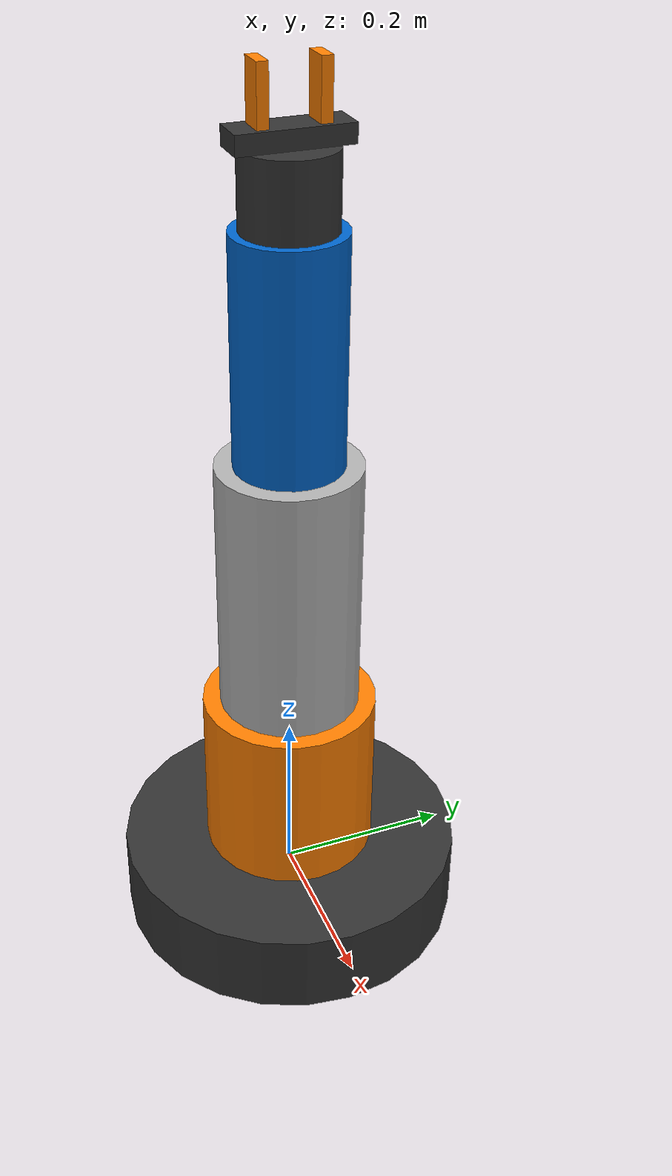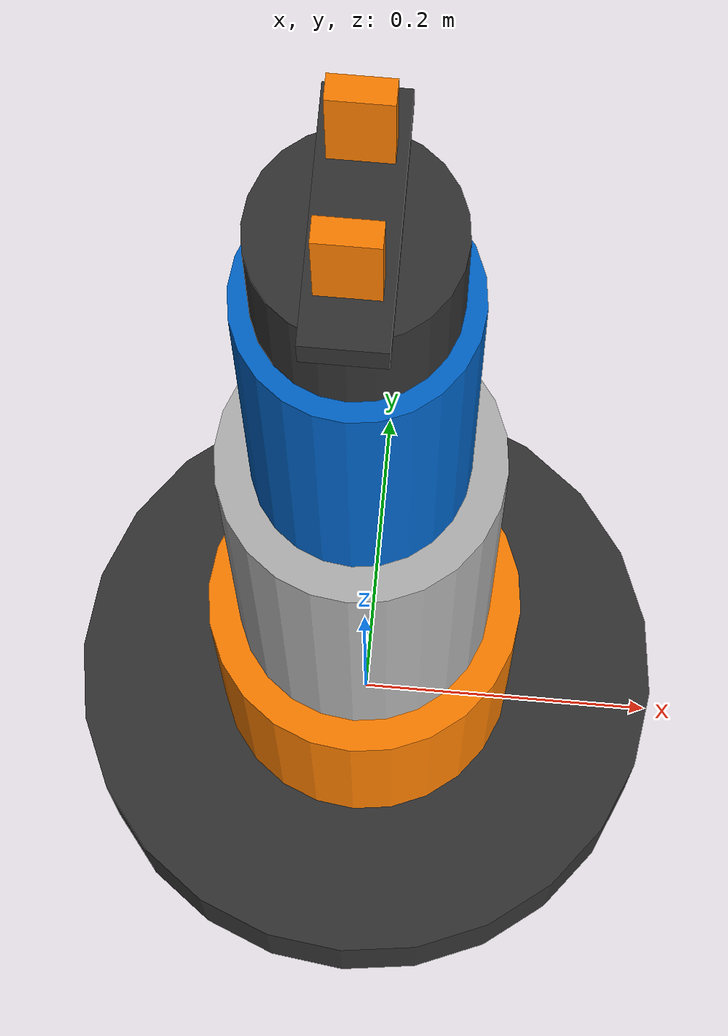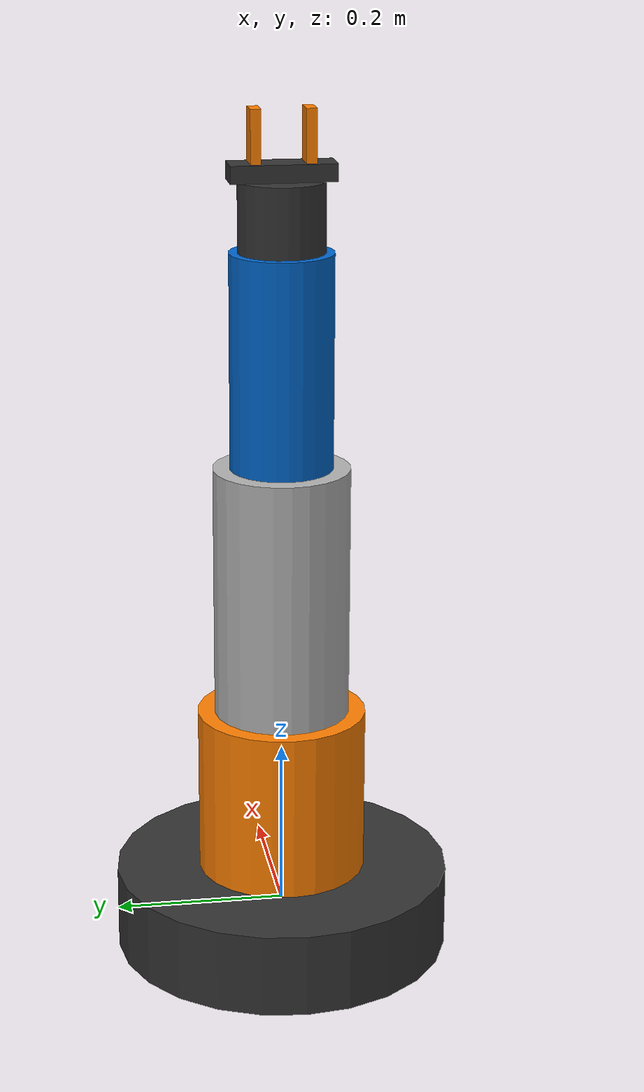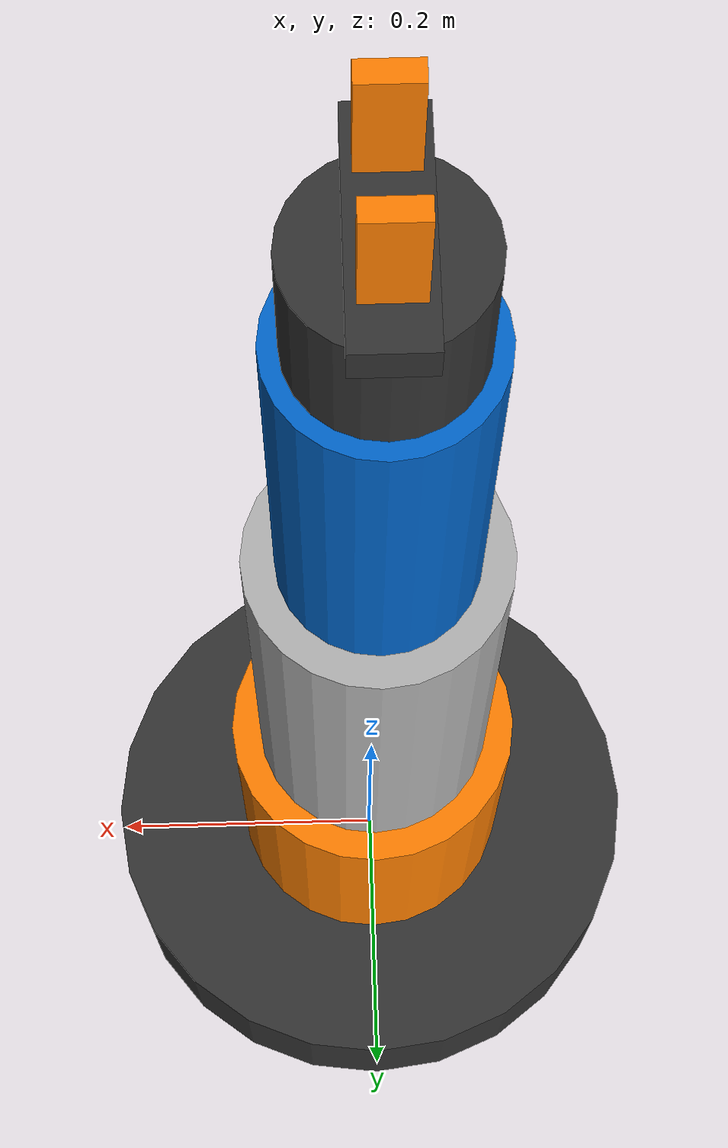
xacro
<?xml version="1.0"?>
<robot xmlns:xacro="http://www.ros.org/wiki/xacro" name="industrial_inspector">

  <xacro:arg name="controllers_config" default=""/>

  <material name="dark_grey"><color rgba="0.2 0.2 0.2 1.0"/></material>
  <material name="orange"><color rgba="1.0 0.5 0.0 1.0"/></material>
  <material name="light_grey"><color rgba="0.7 0.7 0.7 1.0"/></material>
  <material name="blue"><color rgba="0.0 0.4 0.8 1.0"/></material>

  <link name="world"/>

  <joint name="world_joint" type="fixed">
    <parent link="world"/>
    <child link="base_link"/>
    <origin xyz="0 0 0" rpy="0 0 0"/>
  </joint>

  <!-- Base Link -->
  <link name="base_link">
    <visual>
      <geometry><cylinder length="0.1" radius="0.2"/></geometry>
      <material name="dark_grey"/>
    </visual>
    <collision>
      <geometry><cylinder length="0.1" radius="0.2"/></geometry>
    </collision>
    <inertial>
      <mass value="5.0"/>
      <origin xyz="0 0 0" rpy="0 0 0"/>
      <inertia ixx="0.05" ixy="0" ixz="0" iyy="0.05" iyz="0" izz="0.1"/>
    </inertial>
  </link>

  <!-- Joint 1 -->
  <joint name="joint_1" type="revolute">
    <parent link="base_link"/>
    <child link="shoulder_link"/>
    <origin xyz="0 0 0.05" rpy="0 0 0"/>
    <axis xyz="0 0 1"/>
    <limit lower="-3.14" upper="3.14" effort="100" velocity="1.0"/>
  </joint>

  <link name="shoulder_link">
    <visual>
      <geometry><cylinder length="0.2" radius="0.1"/></geometry>
      <origin xyz="0 0 0.1" rpy="0 0 0"/>
      <material name="orange"/>
    </visual>
    <collision>
      <geometry><cylinder length="0.2" radius="0.1"/></geometry>
      <origin xyz="0 0 0.1" rpy="0 0 0"/>
    </collision>
    <inertial>
      <mass value="2.0"/>
      <origin xyz="0 0 0.1" rpy="0 0 0"/>
      <inertia ixx="0.01" ixy="0" ixz="0" iyy="0.01" iyz="0" izz="0.01"/>
    </inertial>
  </link>

  <!-- Joint 2 -->
  <joint name="joint_2" type="revolute">
    <parent link="shoulder_link"/>
    <child link="upper_arm_link"/>
    <origin xyz="0 0 0.2" rpy="0 0 0"/>
    <axis xyz="0 1 0"/>
    <limit lower="-1.57" upper="1.57" effort="100" velocity="1.0"/>
  </joint>

  <link name="upper_arm_link">
    <visual>
      <geometry><cylinder length="0.3" radius="0.08"/></geometry>
      <origin xyz="0 0 0.15" rpy="0 0 0"/>
      <material name="light_grey"/>
    </visual>
    <collision>
      <geometry><cylinder length="0.3" radius="0.08"/></geometry>
      <origin xyz="0 0 0.15" rpy="0 0 0"/>
    </collision>
    <inertial>
      <mass value="1.5"/>
      <origin xyz="0 0 0.15" rpy="0 0 0"/>
      <inertia ixx="0.01" ixy="0" ixz="0" iyy="0.01" iyz="0" izz="0.005"/>
    </inertial>
  </link>

  <!-- Joint 3 (elbow, range widened so the arm can reach the table top) -->
  <joint name="joint_3" type="revolute">
    <parent link="upper_arm_link"/>
    <child link="forearm_link"/>
    <origin xyz="0 0 0.3" rpy="0 0 0"/>
    <axis xyz="0 1 0"/>
    <limit lower="-2.4" upper="2.4" effort="80" velocity="1.0"/>
  </joint>

  <link name="forearm_link">
    <visual>
      <geometry><cylinder length="0.25" radius="0.06"/></geometry>
      <origin xyz="0 0 0.125" rpy="0 0 0"/>
      <material name="blue"/>
    </visual>
    <collision>
      <geometry><cylinder length="0.25" radius="0.06"/></geometry>
      <origin xyz="0 0 0.125" rpy="0 0 0"/>
    </collision>
    <inertial>
      <mass value="1.0"/>
      <origin xyz="0 0 0.125" rpy="0 0 0"/>
      <inertia ixx="0.005" ixy="0" ixz="0" iyy="0.005" iyz="0" izz="0.002"/>
    </inertial>
  </link>

  <!-- Joint 4 (wrist) -->
  <joint name="joint_4" type="revolute">
    <parent link="forearm_link"/>
    <child link="wrist_link"/>
    <origin xyz="0 0 0.25" rpy="0 0 0"/>
    <axis xyz="0 0 1"/>
    <limit lower="-3.14" upper="3.14" effort="40" velocity="1.5"/>
  </joint>

  <link name="wrist_link">
    <visual>
      <geometry><cylinder length="0.08" radius="0.05"/></geometry>
      <origin xyz="0 0 0.04" rpy="0 0 0"/>
      <material name="dark_grey"/>
    </visual>
    <collision>
      <geometry><cylinder length="0.08" radius="0.05"/></geometry>
      <origin xyz="0 0 0.04" rpy="0 0 0"/>
    </collision>
    <inertial>
      <mass value="0.5"/>
      <origin xyz="0 0 0.04" rpy="0 0 0"/>
      <inertia ixx="0.001" ixy="0" ixz="0" iyy="0.001" iyz="0" izz="0.001"/>
    </inertial>
  </link>

  <!-- ===================== Parallel-jaw gripper ===================== -->
  <joint name="gripper_palm_joint" type="fixed">
    <parent link="wrist_link"/>
    <child link="gripper_palm"/>
    <origin xyz="0 0 0.08" rpy="0 0 0"/>
  </joint>

  <link name="gripper_palm">
    <visual>
      <geometry><box size="0.04 0.12 0.02"/></geometry>
      <origin xyz="0 0 0.01" rpy="0 0 0"/>
      <material name="dark_grey"/>
    </visual>
    <collision>
      <geometry><box size="0.04 0.12 0.02"/></geometry>
      <origin xyz="0 0 0.01" rpy="0 0 0"/>
    </collision>
    <inertial>
      <mass value="0.1"/>
      <origin xyz="0 0 0.01" rpy="0 0 0"/>
      <inertia ixx="0.0002" ixy="0" ixz="0" iyy="0.0001" iyz="0" izz="0.0002"/>
    </inertial>
  </link>

  <joint name="finger_left_joint" type="prismatic">
    <parent link="gripper_palm"/>
    <child link="finger_left_link"/>
    <origin xyz="0 0.025 0.02" rpy="0 0 0"/>
    <axis xyz="0 1 0"/>
    <limit lower="-0.01" upper="0.03" effort="30" velocity="0.1"/>
  </joint>

  <link name="finger_left_link">
    <visual>
      <geometry><box size="0.03 0.012 0.06"/></geometry>
      <origin xyz="0 0.006 0.03" rpy="0 0 0"/>
      <material name="orange"/>
    </visual>
    <collision>
      <geometry><box size="0.03 0.012 0.06"/></geometry>
      <origin xyz="0 0.006 0.03" rpy="0 0 0"/>
    </collision>
    <inertial>
      <mass value="0.05"/>
      <origin xyz="0 0.006 0.03" rpy="0 0 0"/>
      <inertia ixx="0.00002" ixy="0" ixz="0" iyy="0.00002" iyz="0" izz="0.00001"/>
    </inertial>
  </link>

  <joint name="finger_right_joint" type="prismatic">
    <parent link="gripper_palm"/>
    <child link="finger_right_link"/>
    <origin xyz="0 -0.025 0.02" rpy="0 0 0"/>
    <axis xyz="0 -1 0"/>
    <limit lower="-0.01" upper="0.03" effort="30" velocity="0.1"/>
  </joint>

  <link name="finger_right_link">
    <visual>
      <geometry><box size="0.03 0.012 0.06"/></geometry>
      <origin xyz="0 -0.006 0.03" rpy="0 0 0"/>
      <material name="orange"/>
    </visual>
    <collision>
      <geometry><box size="0.03 0.012 0.06"/></geometry>
      <origin xyz="0 -0.006 0.03" rpy="0 0 0"/>
    </collision>
    <inertial>
      <mass value="0.05"/>
      <origin xyz="0 -0.006 0.03" rpy="0 0 0"/>
      <inertia ixx="0.00002" ixy="0" ixz="0" iyy="0.00002" iyz="0" izz="0.00001"/>
    </inertial>
  </link>

  <!-- Tool centre point: 0.13 m beyond the wrist joint -->
  <joint name="tool_center_joint" type="fixed">
    <parent link="gripper_palm"/>
    <child link="tool_center"/>
    <origin xyz="0 0 0.05" rpy="0 0 0"/>
  </joint>
  <link name="tool_center"/>

  <gazebo reference="finger_left_link"><mu1>1.5</mu1><mu2>1.5</mu2></gazebo>
  <gazebo reference="finger_right_link"><mu1>1.5</mu1><mu2>1.5</mu2></gazebo>

  <!-- ros2_control Hardware Interface Definition -->
  <ros2_control name="GazeboSimSystem" type="system">
    <hardware>
      <plugin>gz_ros2_control/GazeboSimSystem</plugin>
    </hardware>
    <joint name="joint_1">
      <command_interface name="position"/>
      <state_interface name="position"/>
      <state_interface name="velocity"/>
    </joint>
    <joint name="joint_2">
      <command_interface name="position"/>
      <state_interface name="position"/>
      <state_interface name="velocity"/>
    </joint>
    <joint name="joint_3">
      <command_interface name="position"/>
      <state_interface name="position"/>
      <state_interface name="velocity"/>
    </joint>
    <joint name="joint_4">
      <command_interface name="position"/>
      <state_interface name="position"/>
      <state_interface name="velocity"/>
    </joint>
    <joint name="finger_left_joint">
      <command_interface name="position"/>
      <state_interface name="position"/>
      <state_interface name="velocity"/>
    </joint>
    <joint name="finger_right_joint">
      <command_interface name="position"/>
      <state_interface name="position"/>
      <state_interface name="velocity"/>
    </joint>
  </ros2_control>

  <gazebo>
    <plugin filename="gz_ros2_control-system" name="gz_ros2_control::GazeboSimROS2ControlPlugin">
      <parameters>$(arg controllers_config)</parameters>
    </plugin>
  </gazebo>

</robot>
